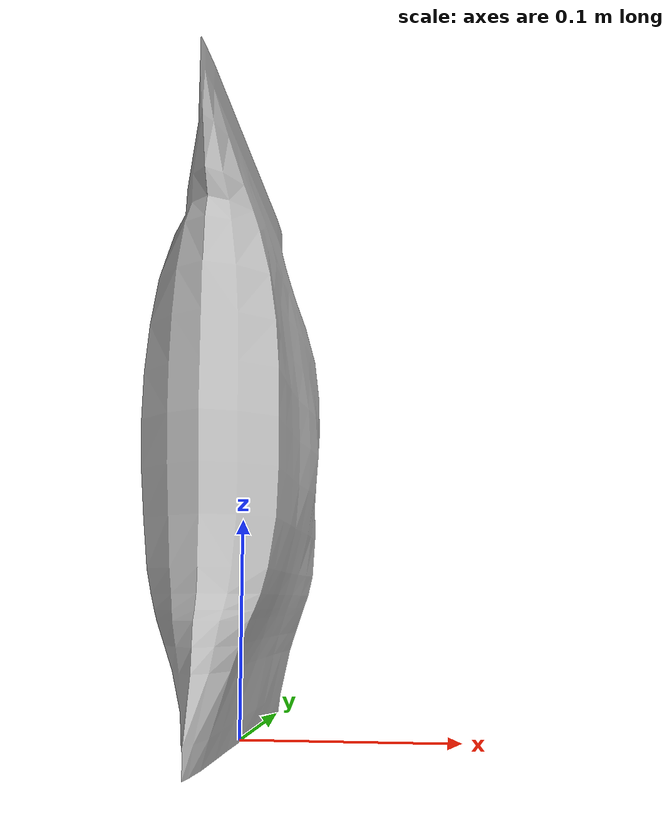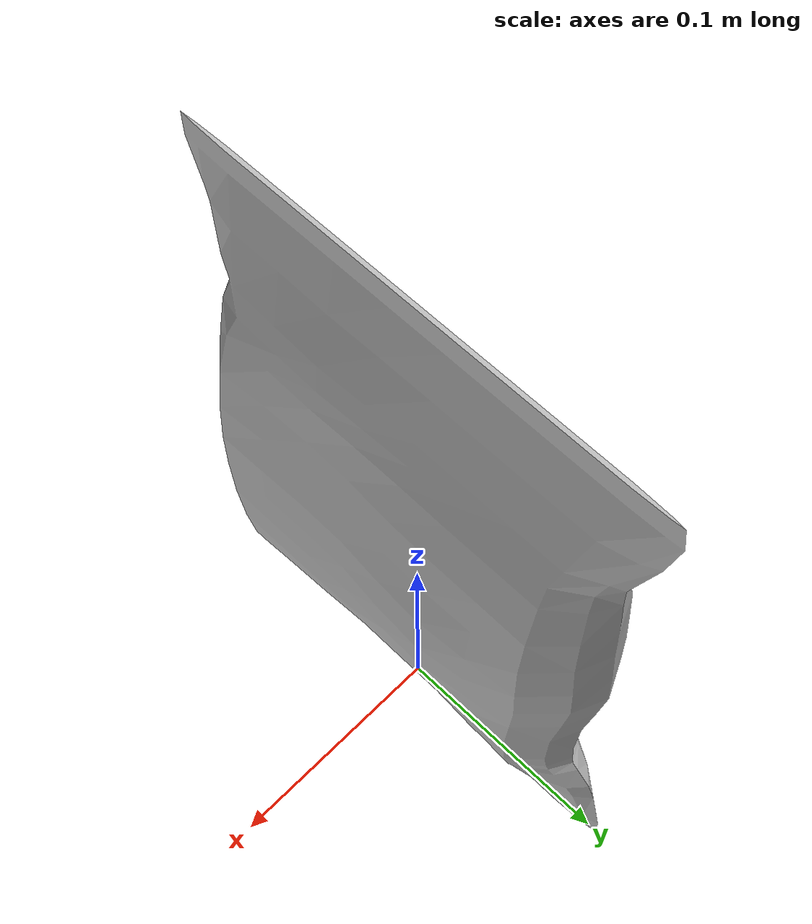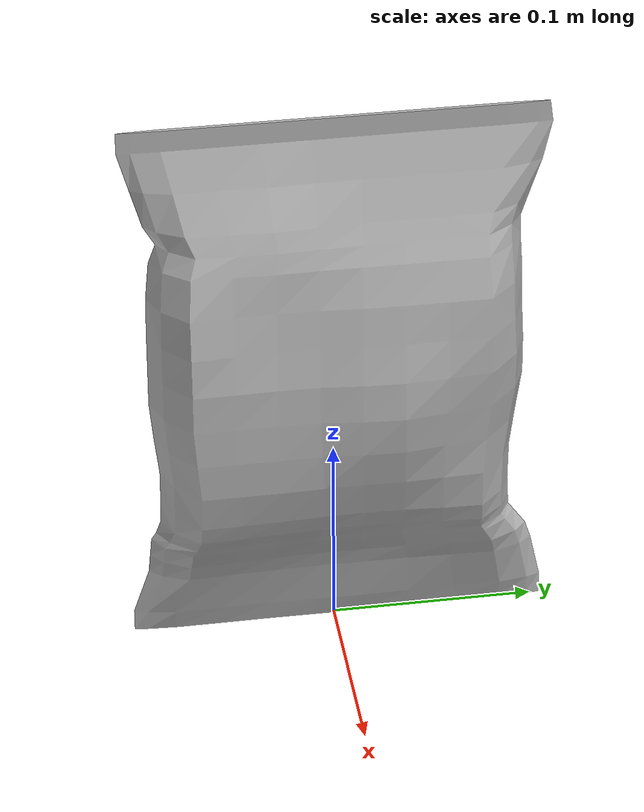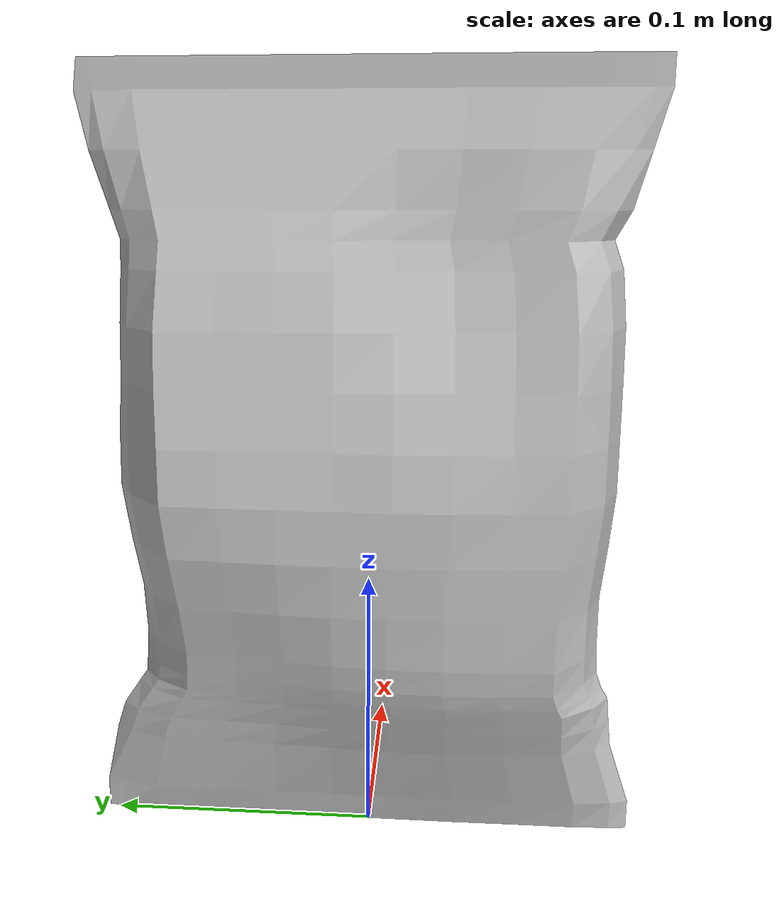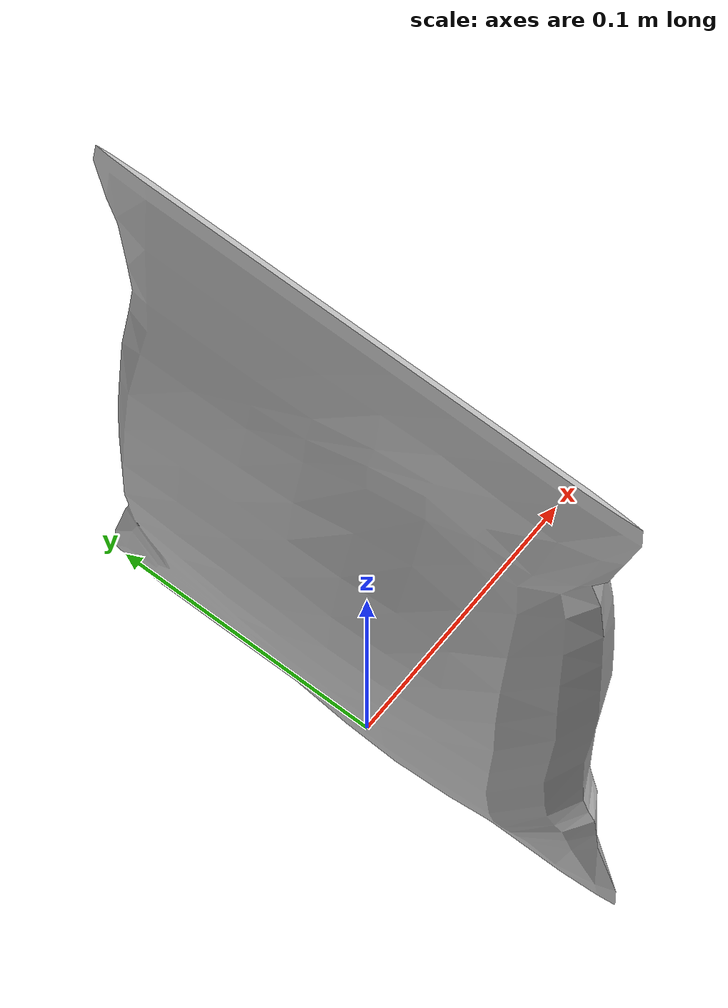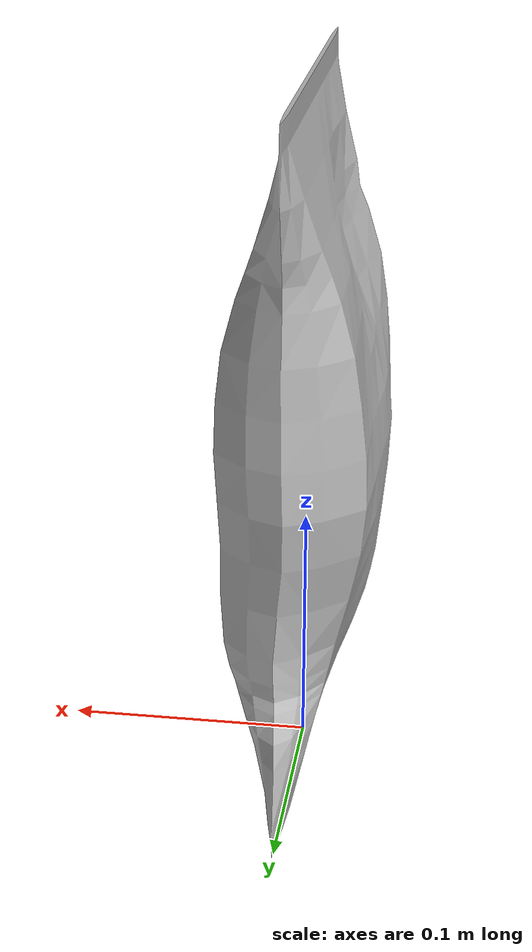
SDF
<?xml version="1.0" ?>

<sdf version="1.5">
  <model name="nrp_7eleven_bag_chips_consomme">
    <static>true</static>
    <link name="link">
      <visual name="visual">
        <geometry>
          <mesh>
            <uri>model://nrp_7eleven_bag_chips_consomme/meshes/nrp_7eleven_bag_chips_consomme.dae</uri>
          </mesh>
        </geometry>
        <material>
          <emissive>0.5 0.5 0.5 1</emissive>
        </material>
      </visual>
    </link>
  </model>
</sdf>
